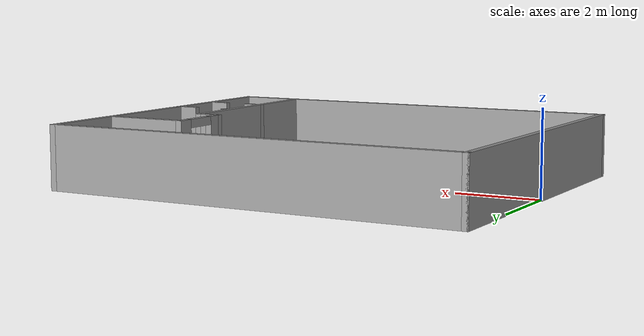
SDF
<?xml version='1.0'?>
<sdf version='1.6'>
  <model name='robocup_indoor'>
    <pose frame=''>5 0 0 0 -0 0</pose>
    <link name='Wall_11'>
      <collision name='Wall_11_Collision'>
        <geometry>
          <box>
            <size>4.65 0.15 1.5</size>
          </box>
        </geometry>
        <pose frame=''>0 0 0.75 0 -0 0</pose>
      </collision>
      <visual name='Wall_11_Visual'>
        <pose frame=''>0 0 0.75 0 -0 0</pose>
        <geometry>
          <box>
            <size>4.65 0.15 1.5</size>
          </box>
        </geometry>
        <material>
          <script>
            <uri>file://media/materials/scripts/gazebo.material</uri>
            <name>Gazebo/Grey</name>
          </script>
          <ambient>1 1 1 1</ambient>
        </material>
        <meta>
          <layer>0</layer>
        </meta>
      </visual>
      <pose frame=''>3.5 -1.75 0 0 -0 1.5708</pose>
    </link>
    <link name='Wall_13'>
      <collision name='Wall_13_Collision'>
        <geometry>
          <box>
            <size>0.65 0.15 1.5</size>
          </box>
        </geometry>
        <pose frame=''>0 0 0.75 0 -0 0</pose>
      </collision>
      <visual name='Wall_13_Visual'>
        <pose frame=''>0 0 0.75 0 -0 0</pose>
        <geometry>
          <box>
            <size>0.65 0.15 1.5</size>
          </box>
        </geometry>
        <material>
          <script>
            <uri>file://media/materials/scripts/gazebo.material</uri>
            <name>Gazebo/Grey</name>
          </script>
          <ambient>1 1 1 1</ambient>
        </material>
        <meta>
          <layer>0</layer>
        </meta>
      </visual>
      <pose frame=''>3.25 0.5 0 0 -0 3.14159</pose>
    </link>
    <link name='Wall_15'>
      <pose frame=''>3 1.25 0 0 -0 1.5708</pose>
      <visual name='Wall_15_Visual_0'>
        <pose frame=''>-0.600442 0 0.75 0 -0 0</pose>
        <geometry>
          <box>
            <size>0.449116 0.15 1.5</size>
          </box>
        </geometry>
        <material>
          <script>
            <uri>file://media/materials/scripts/gazebo.material</uri>
            <name>Gazebo/Grey</name>
          </script>
          <ambient>1 1 1 1</ambient>
        </material>
        <meta>
          <layer>0</layer>
        </meta>
      </visual>
      <collision name='Wall_15_Collision_0'>
        <geometry>
          <box>
            <size>0.449116 0.15 1.5</size>
          </box>
        </geometry>
        <pose frame=''>-0.600442 0 0.75 0 -0 0</pose>
      </collision>
      <visual name='Wall_15_Visual_1'>
        <pose frame=''>0.224558 0 0.25 0 -0 0</pose>
        <geometry>
          <box>
            <size>1.20088 0.15 0.5</size>
          </box>
        </geometry>
        <material>
          <script>
            <uri>file://media/materials/scripts/gazebo.material</uri>
            <name>Gazebo/Grey</name>
          </script>
          <ambient>1 1 1 1</ambient>
        </material>
        <meta>
          <layer>0</layer>
        </meta>
      </visual>
      <collision name='Wall_15_Collision_1'>
        <geometry>
          <box>
            <size>1.20088 0.15 0.5</size>
          </box>
        </geometry>
        <pose frame=''>0.224558 0 0.25 0 -0 0</pose>
      </collision>
      <visual name='Wall_15_Visual_2'>
        <pose frame=''>0.624558 0 1 0 -0 0</pose>
        <geometry>
          <box>
            <size>0.400884 0.15 1</size>
          </box>
        </geometry>
        <material>
          <script>
            <uri>file://media/materials/scripts/gazebo.material</uri>
            <name>Gazebo/Grey</name>
          </script>
          <ambient>1 1 1 1</ambient>
        </material>
        <meta>
          <layer>0</layer>
        </meta>
      </visual>
      <collision name='Wall_15_Collision_2'>
        <geometry>
          <box>
            <size>0.400884 0.15 1</size>
          </box>
        </geometry>
        <pose frame=''>0.624558 0 1 0 -0 0</pose>
      </collision>
      <visual name='Wall_15_Visual_3'>
        <pose frame=''>0.024116 0 1.4 0 -0 0</pose>
        <geometry>
          <box>
            <size>0.8 0.15 0.2</size>
          </box>
        </geometry>
        <material>
          <script>
            <uri>file://media/materials/scripts/gazebo.material</uri>
            <name>Gazebo/Grey</name>
          </script>
          <ambient>1 1 1 1</ambient>
        </material>
        <meta>
          <layer>0</layer>
        </meta>
      </visual>
      <collision name='Wall_15_Collision_3'>
        <geometry>
          <box>
            <size>0.8 0.15 0.2</size>
          </box>
        </geometry>
        <pose frame=''>0.024116 0 1.4 0 -0 0</pose>
      </collision>
    </link>
    <link name='Wall_17'>
      <collision name='Wall_17_Collision'>
        <geometry>
          <box>
            <size>2 0.15 1.5</size>
          </box>
        </geometry>
        <pose frame=''>0 0 0.75 0 -0 0</pose>
      </collision>
      <visual name='Wall_17_Visual'>
        <pose frame=''>0 0 0.75 0 -0 0</pose>
        <geometry>
          <box>
            <size>2 0.15 1.5</size>
          </box>
        </geometry>
        <material>
          <script>
            <uri>file://media/materials/scripts/gazebo.material</uri>
            <name>Gazebo/Grey</name>
          </script>
          <ambient>1 1 1 1</ambient>
        </material>
        <meta>
          <layer>0</layer>
        </meta>
      </visual>
      <pose frame=''>3.925 2 0 0 -0 0</pose>
    </link>
    <link name='Wall_19'>
      <collision name='Wall_19_Collision'>
        <geometry>
          <box>
            <size>0.1 0.15 1.5</size>
          </box>
        </geometry>
        <pose frame=''>0 0 0.75 0 -0 0</pose>
      </collision>
      <visual name='Wall_19_Visual'>
        <pose frame=''>0 0 0.75 0 -0 0</pose>
        <geometry>
          <box>
            <size>0.1 0.15 1.5</size>
          </box>
        </geometry>
        <material>
          <script>
            <uri>file://media/materials/scripts/gazebo.material</uri>
            <name>Gazebo/Grey</name>
          </script>
          <ambient>1 1 1 1</ambient>
        </material>
        <meta>
          <layer>0</layer>
        </meta>
      </visual>
      <pose frame=''>3.675 -0.8 0 0 -0 0</pose>
    </link>
    <link name='Wall_21'>
      <collision name='Wall_21_Collision'>
        <geometry>
          <box>
            <size>0.6 0.15 1.5</size>
          </box>
        </geometry>
        <pose frame=''>0 0 0.75 0 -0 0</pose>
      </collision>
      <visual name='Wall_21_Visual'>
        <pose frame=''>0 0 0.75 0 -0 0</pose>
        <geometry>
          <box>
            <size>0.6 0.15 1.5</size>
          </box>
        </geometry>
        <material>
          <script>
            <uri>file://media/materials/scripts/gazebo.material</uri>
            <name>Gazebo/Grey</name>
          </script>
          <ambient>1 1 1 1</ambient>
        </material>
        <meta>
          <layer>0</layer>
        </meta>
      </visual>
      <pose frame=''>4.775 -0.8 0 0 -0 0</pose>
    </link>
    <link name='Wall_23'>
      <collision name='Wall_23_Collision'>
        <geometry>
          <box>
            <size>0.5 0.15 1.5</size>
          </box>
        </geometry>
        <pose frame=''>0 0 0.75 0 -0 0</pose>
      </collision>
      <visual name='Wall_23_Visual'>
        <pose frame=''>0 0 0.75 0 -0 0</pose>
        <geometry>
          <box>
            <size>0.5 0.15 1.5</size>
          </box>
        </geometry>
        <material>
          <script>
            <uri>file://media/materials/scripts/gazebo.material</uri>
            <name>Gazebo/Grey</name>
          </script>
          <ambient>1 1 1 1</ambient>
        </material>
        <meta>
          <layer>0</layer>
        </meta>
      </visual>
      <pose frame=''>3.675 -2.2 0 0 -0 0</pose>
    </link>
    <link name='Wall_25'>
      <collision name='Wall_25_Collision'>
        <geometry>
          <box>
            <size>0.6 0.15 1.5</size>
          </box>
        </geometry>
        <pose frame=''>0 0 0.75 0 -0 0</pose>
      </collision>
      <visual name='Wall_25_Visual'>
        <pose frame=''>0 0 0.75 0 -0 0</pose>
        <geometry>
          <box>
            <size>0.6 0.15 1.5</size>
          </box>
        </geometry>
        <material>
          <script>
            <uri>file://media/materials/scripts/gazebo.material</uri>
            <name>Gazebo/Grey</name>
          </script>
          <ambient>1 1 1 1</ambient>
        </material>
        <meta>
          <layer>0</layer>
        </meta>
      </visual>
      <pose frame=''>4.775 -2.2 0 0 -0 0</pose>
    </link>
    <link name='Wall_3'>
      <collision name='Wall_3_Collision'>
        <geometry>
          <box>
            <size>8.15 0.15 1.5</size>
          </box>
        </geometry>
        <pose frame=''>0 0 0.75 0 -0 0</pose>
      </collision>
      <visual name='Wall_3_Visual'>
        <pose frame=''>0 0 0.75 0 -0 0</pose>
        <geometry>
          <box>
            <size>8.15 0.15 1.5</size>
          </box>
        </geometry>
        <material>
          <script>
            <uri>file://media/materials/scripts/gazebo.material</uri>
            <name>Gazebo/Grey</name>
          </script>
          <ambient>1 1 1 1</ambient>
        </material>
        <meta>
          <layer>0</layer>
        </meta>
      </visual>
      <pose frame=''>-5 0 0 0 -0 1.5708</pose>
    </link>
    <link name='Wall_5'>
      <collision name='Wall_5_Collision'>
        <geometry>
          <box>
            <size>10.15 0.15 1.5</size>
          </box>
        </geometry>
        <pose frame=''>0 0 0.75 0 -0 0</pose>
      </collision>
      <visual name='Wall_5_Visual'>
        <pose frame=''>0 0 0.75 0 -0 0</pose>
        <geometry>
          <box>
            <size>10.15 0.15 1.5</size>
          </box>
        </geometry>
        <material>
          <script>
            <uri>file://media/materials/scripts/gazebo.material</uri>
            <name>Gazebo/Grey</name>
          </script>
          <ambient>1 1 1 1</ambient>
        </material>
        <meta>
          <layer>0</layer>
        </meta>
      </visual>
      <pose frame=''>-0 -4 0 0 -0 0</pose>
    </link>
    <link name='Wall_7'>
      <collision name='Wall_7_Collision'>
        <geometry>
          <box>
            <size>8.15 0.15 1.5</size>
          </box>
        </geometry>
        <pose frame=''>0 0 0.75 0 -0 0</pose>
      </collision>
      <visual name='Wall_7_Visual'>
        <pose frame=''>0 0 0.75 0 -0 0</pose>
        <geometry>
          <box>
            <size>8.15 0.15 1.5</size>
          </box>
        </geometry>
        <material>
          <script>
            <uri>file://media/materials/scripts/gazebo.material</uri>
            <name>Gazebo/Grey</name>
          </script>
          <ambient>1 1 1 1</ambient>
        </material>
        <meta>
          <layer>0</layer>
        </meta>
      </visual>
      <pose frame=''>5 0 0 0 -0 1.5708</pose>
    </link>
    <link name='Wall_9'>
      <collision name='Wall_9_Collision'>
        <geometry>
          <box>
            <size>10 0.15 1.5</size>
          </box>
        </geometry>
        <pose frame=''>0 0 0.75 0 -0 0</pose>
      </collision>
      <visual name='Wall_9_Visual'>
        <pose frame=''>0 0 0.75 0 -0 0</pose>
        <geometry>
          <box>
            <size>10 0.15 1.5</size>
          </box>
        </geometry>
        <material>
          <script>
            <uri>file://media/materials/scripts/gazebo.material</uri>
            <name>Gazebo/Grey</name>
          </script>
          <ambient>1 1 1 1</ambient>
        </material>
        <meta>
          <layer>0</layer>
        </meta>
      </visual>
      <pose frame=''>-0.075 4 0 0 -0 0</pose>
    </link>
    <static>1</static>
  </model>
</sdf>
